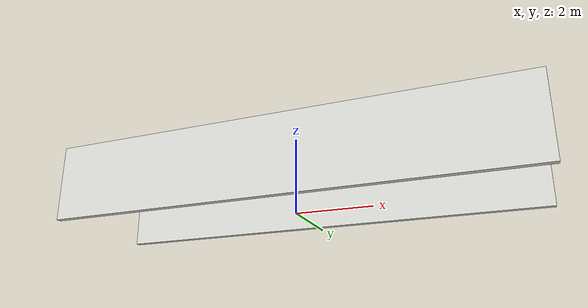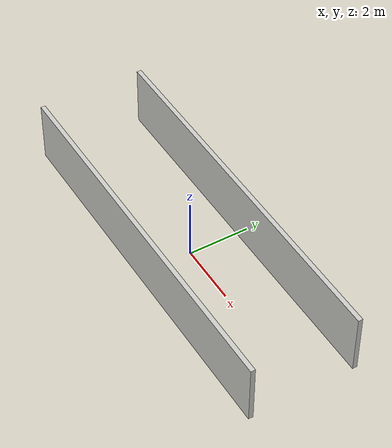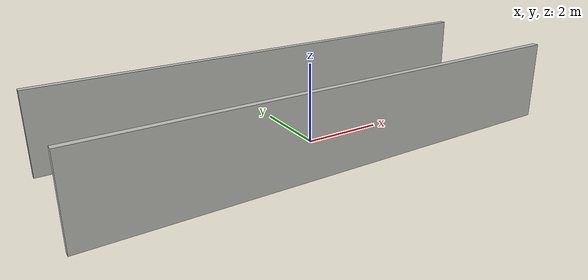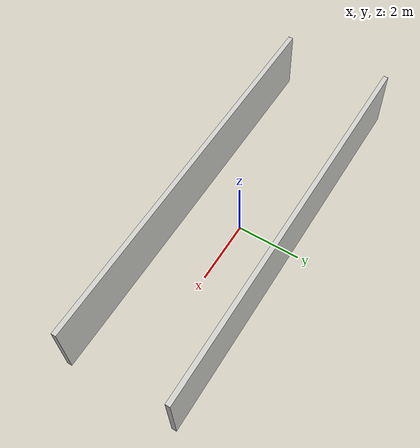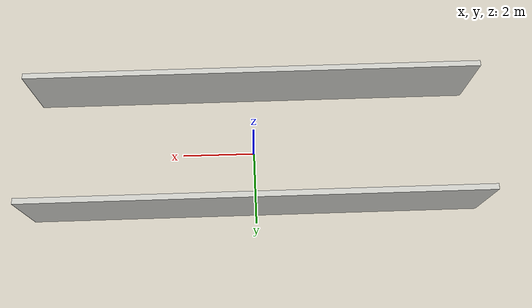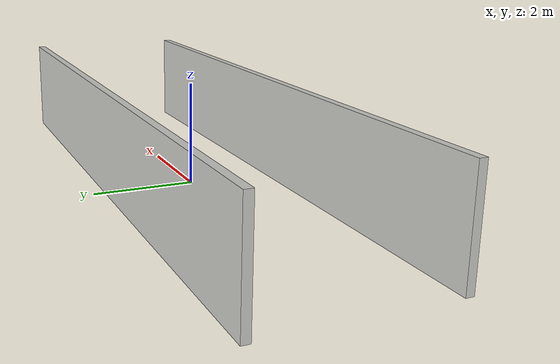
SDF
<?xml version='1.0'?>
<sdf version='1.7'>
  <model name='simple_hallway'>
    <pose>0 0 0 0 -0 0</pose>
    <link name='Wall_0'>
      <collision name='Wall_0_Collision'>
        <geometry>
          <box>
            <size>12.15 0.15 2</size>
          </box>
        </geometry>
        <pose>0 0 1 0 -0 0</pose>
      </collision>
      <visual name='Wall_0_Visual'>
        <pose>0 0 1 0 -0 0</pose>
        <geometry>
          <box>
            <size>12.15 0.15 2</size>
          </box>
        </geometry>
        <material>
          <script>
            <uri>file://media/materials/scripts/gazebo.material</uri>
            <name>Gazebo/CeilingTiled</name>
          </script>
          <ambient>0.760784 0.662745 0.627451 1</ambient>
        </material>
        <meta>
          <layer>0</layer>
        </meta>
      </visual>
      <pose>0 -1.7 0 0 -0 0</pose>
    </link>
    <link name='Wall_5'>
      <collision name='Wall_5_Collision'>
        <geometry>
          <box>
            <size>12.15 0.15 2</size>
          </box>
        </geometry>
        <pose>0 0 1 0 -0 0</pose>
      </collision>
      <visual name='Wall_5_Visual'>
        <pose>0 0 1 0 -0 0</pose>
        <geometry>
          <box>
            <size>12.15 0.15 2</size>
          </box>
        </geometry>
        <material>
          <script>
            <uri>file://media/materials/scripts/gazebo.material</uri>
            <name>Gazebo/CeilingTiled</name>
          </script>
          <ambient>0.760784 0.662745 0.627451 1</ambient>
        </material>
        <meta>
          <layer>0</layer>
        </meta>
      </visual>
      <pose>0 1.7 0 0 -0 0</pose>
    </link>
    <static>1</static>
  </model>
</sdf>
